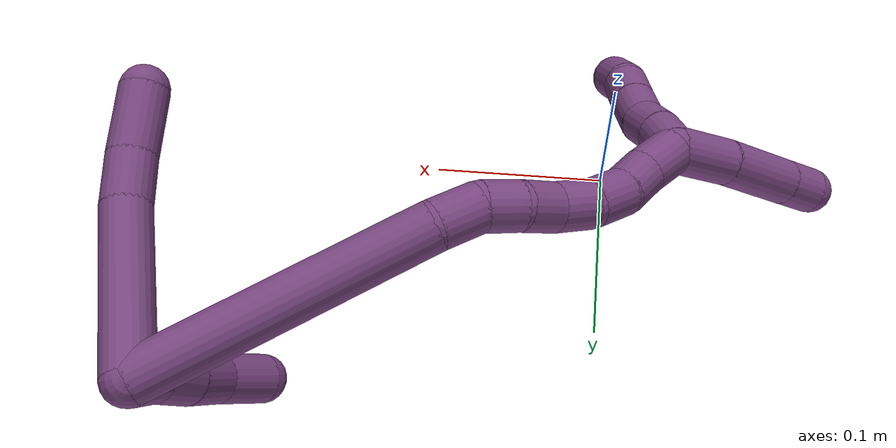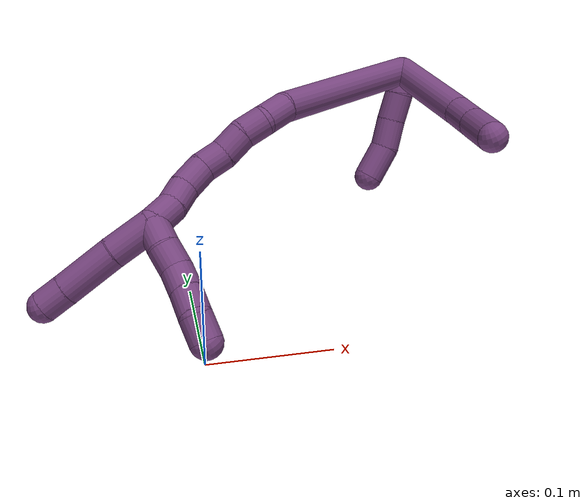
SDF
<sdf version="1.7">
 <world name="default">
  <model name="20">
   <static>0</static>
   <link name="20">
    <collision name="collision-cylinder-e_1_2_8">
     <pose>0.008859 -0.04054 -0.013693 1.89653 0.20416 0.283527</pose>
     <geometry><cylinder><radius>0.0125</radius><length>0.087395</length></cylinder></geometry>
     <surface>
      <friction><ode><mu>1.16</mu><mu2>1.16</mu2><slip1>0</slip1><slip2>0</slip2></ode></friction>
      <contact><ode><kp>1e+06</kp><kd>1</kd><max_vel>0</max_vel><min_depth>0.001</min_depth></ode></contact>
     </surface>
    </collision>
    <visual name="visual-cylinder-e_1_2_8">
     <pose>0.008859 -0.04054 -0.013693 1.89653 0.20416 0.283527</pose>
     <geometry><cylinder><radius>0.0125</radius><length>0.087395</length></cylinder></geometry>
     <material><ambient>0.478431 0.278431 0.509804 1</ambient></material>
    </visual>
    <collision name="collision-cylinder-e_2_8_9">
     <pose>0.019231 -0.094142 -0.029885 1.75981 0.113204 0.136845</pose>
     <geometry><cylinder><radius>0.0125</radius><length>0.026769</length></cylinder></geometry>
     <surface>
      <friction><ode><mu>1.16</mu><mu2>1.16</mu2><slip1>0</slip1><slip2>0</slip2></ode></friction>
      <contact><ode><kp>1e+06</kp><kd>1</kd><max_vel>0</max_vel><min_depth>0.001</min_depth></ode></contact>
     </surface>
    </collision>
    <visual name="visual-cylinder-e_2_8_9">
     <pose>0.019231 -0.094142 -0.029885 1.75981 0.113204 0.136845</pose>
     <geometry><cylinder><radius>0.0125</radius><length>0.026769</length></cylinder></geometry>
     <material><ambient>0.478431 0.278431 0.509804 1</ambient></material>
    </visual>
    <collision name="collision-cylinder-e_3_9_6">
     <pose>0.021783 -0.125038 -0.033764 1.64808 0.058082 0.062751</pose>
     <geometry><cylinder><radius>0.0125</radius><length>0.035836</length></cylinder></geometry>
     <surface>
      <friction><ode><mu>1.16</mu><mu2>1.16</mu2><slip1>0</slip1><slip2>0</slip2></ode></friction>
      <contact><ode><kp>1e+06</kp><kd>1</kd><max_vel>0</max_vel><min_depth>0.001</min_depth></ode></contact>
     </surface>
    </collision>
    <visual name="visual-cylinder-e_3_9_6">
     <pose>0.021783 -0.125038 -0.033764 1.64808 0.058082 0.062751</pose>
     <geometry><cylinder><radius>0.0125</radius><length>0.035836</length></cylinder></geometry>
     <material><ambient>0.478431 0.278431 0.509804 1</ambient></material>
    </visual>
    <collision name="collision-cylinder-e_1_2_10">
     <pose>-0.005601 -0.002738 -0.008095 2.81541 -0.580142 -2.13395</pose>
     <geometry><cylinder><radius>0.0125</radius><length>0.020435</length></cylinder></geometry>
     <surface>
      <friction><ode><mu>1.16</mu><mu2>1.16</mu2><slip1>0</slip1><slip2>0</slip2></ode></friction>
      <contact><ode><kp>1e+06</kp><kd>1</kd><max_vel>0</max_vel><min_depth>0.001</min_depth></ode></contact>
     </surface>
    </collision>
    <visual name="visual-cylinder-e_1_2_10">
     <pose>-0.005601 -0.002738 -0.008095 2.81541 -0.580142 -2.13395</pose>
     <geometry><cylinder><radius>0.0125</radius><length>0.020435</length></cylinder></geometry>
     <material><ambient>0.478431 0.278431 0.509804 1</ambient></material>
    </visual>
    <collision name="collision-cylinder-e_2_10_11">
     <pose>-0.019285 -0.007274 -0.025122 2.94304 -0.72571 -2.62846</pose>
     <geometry><cylinder><radius>0.0125</radius><length>0.024359</length></cylinder></geometry>
     <surface>
      <friction><ode><mu>1.16</mu><mu2>1.16</mu2><slip1>0</slip1><slip2>0</slip2></ode></friction>
      <contact><ode><kp>1e+06</kp><kd>1</kd><max_vel>0</max_vel><min_depth>0.001</min_depth></ode></contact>
     </surface>
    </collision>
    <visual name="visual-cylinder-e_2_10_11">
     <pose>-0.019285 -0.007274 -0.025122 2.94304 -0.72571 -2.62846</pose>
     <geometry><cylinder><radius>0.0125</radius><length>0.024359</length></cylinder></geometry>
     <material><ambient>0.478431 0.278431 0.509804 1</ambient></material>
    </visual>
    <collision name="collision-cylinder-e_3_11_12">
     <pose>-0.035308 -0.011902 -0.043513 2.85078 -0.677322 -2.35357</pose>
     <geometry><cylinder><radius>0.0125</radius><length>0.025341</length></cylinder></geometry>
     <surface>
      <friction><ode><mu>1.16</mu><mu2>1.16</mu2><slip1>0</slip1><slip2>0</slip2></ode></friction>
      <contact><ode><kp>1e+06</kp><kd>1</kd><max_vel>0</max_vel><min_depth>0.001</min_depth></ode></contact>
     </surface>
    </collision>
    <visual name="visual-cylinder-e_3_11_12">
     <pose>-0.035308 -0.011902 -0.043513 2.85078 -0.677322 -2.35357</pose>
     <geometry><cylinder><radius>0.0125</radius><length>0.025341</length></cylinder></geometry>
     <material><ambient>0.478431 0.278431 0.509804 1</ambient></material>
    </visual>
    <collision name="collision-cylinder-e_4_12_5">
     <pose>-0.055415 -0.018006 -0.060988 2.75397 -0.952235 -2.41423</pose>
     <geometry><cylinder><radius>0.0125</radius><length>0.029865</length></cylinder></geometry>
     <surface>
      <friction><ode><mu>1.16</mu><mu2>1.16</mu2><slip1>0</slip1><slip2>0</slip2></ode></friction>
      <contact><ode><kp>1e+06</kp><kd>1</kd><max_vel>0</max_vel><min_depth>0.001</min_depth></ode></contact>
     </surface>
    </collision>
    <visual name="visual-cylinder-e_4_12_5">
     <pose>-0.055415 -0.018006 -0.060988 2.75397 -0.952235 -2.41423</pose>
     <geometry><cylinder><radius>0.0125</radius><length>0.029865</length></cylinder></geometry>
     <material><ambient>0.478431 0.278431 0.509804 1</ambient></material>
    </visual>
    <collision name="collision-cylinder-e_1_2_13">
     <pose>-0.055322 -0.043752 0.021185 1.11986 -0.849878 -0.55279</pose>
     <geometry><cylinder><radius>0.0125</radius><length>0.14729</length></cylinder></geometry>
     <surface>
      <friction><ode><mu>1.16</mu><mu2>1.16</mu2><slip1>0</slip1><slip2>0</slip2></ode></friction>
      <contact><ode><kp>1e+06</kp><kd>1</kd><max_vel>0</max_vel><min_depth>0.001</min_depth></ode></contact>
     </surface>
    </collision>
    <visual name="visual-cylinder-e_1_2_13">
     <pose>-0.055322 -0.043752 0.021185 1.11986 -0.849878 -0.55279</pose>
     <geometry><cylinder><radius>0.0125</radius><length>0.14729</length></cylinder></geometry>
     <material><ambient>0.478431 0.278431 0.509804 1</ambient></material>
    </visual>
    <collision name="collision-cylinder-e_2_13_14">
     <pose>-0.120395 -0.094411 0.043221 1.44834 -0.950895 -0.854608</pose>
     <geometry><cylinder><radius>0.0125</radius><length>0.02396</length></cylinder></geometry>
     <surface>
      <friction><ode><mu>1.16</mu><mu2>1.16</mu2><slip1>0</slip1><slip2>0</slip2></ode></friction>
      <contact><ode><kp>1e+06</kp><kd>1</kd><max_vel>0</max_vel><min_depth>0.001</min_depth></ode></contact>
     </surface>
    </collision>
    <visual name="visual-cylinder-e_2_13_14">
     <pose>-0.120395 -0.094411 0.043221 1.44834 -0.950895 -0.854608</pose>
     <geometry><cylinder><radius>0.0125</radius><length>0.02396</length></cylinder></geometry>
     <material><ambient>0.478431 0.278431 0.509804 1</ambient></material>
    </visual>
    <collision name="collision-cylinder-e_3_14_15">
     <pose>-0.139976 -0.104181 0.043745 1.68412 -1.28573 -1.39625</pose>
     <geometry><cylinder><radius>0.0125</radius><length>0.020488</length></cylinder></geometry>
     <surface>
      <friction><ode><mu>1.16</mu><mu2>1.16</mu2><slip1>0</slip1><slip2>0</slip2></ode></friction>
      <contact><ode><kp>1e+06</kp><kd>1</kd><max_vel>0</max_vel><min_depth>0.001</min_depth></ode></contact>
     </surface>
    </collision>
    <visual name="visual-cylinder-e_3_14_15">
     <pose>-0.139976 -0.104181 0.043745 1.68412 -1.28573 -1.39625</pose>
     <geometry><cylinder><radius>0.0125</radius><length>0.020488</length></cylinder></geometry>
     <material><ambient>0.478431 0.278431 0.509804 1</ambient></material>
    </visual>
    <collision name="collision-cylinder-e_4_15_16">
     <pose>-0.159613 -0.109996 0.040405 2.3665 -1.16447 -2.0316</pose>
     <geometry><cylinder><radius>0.0125</radius><length>0.021351</length></cylinder></geometry>
     <surface>
      <friction><ode><mu>1.16</mu><mu2>1.16</mu2><slip1>0</slip1><slip2>0</slip2></ode></friction>
      <contact><ode><kp>1e+06</kp><kd>1</kd><max_vel>0</max_vel><min_depth>0.001</min_depth></ode></contact>
     </surface>
    </collision>
    <visual name="visual-cylinder-e_4_15_16">
     <pose>-0.159613 -0.109996 0.040405 2.3665 -1.16447 -2.0316</pose>
     <geometry><cylinder><radius>0.0125</radius><length>0.021351</length></cylinder></geometry>
     <material><ambient>0.478431 0.278431 0.509804 1</ambient></material>
    </visual>
    <collision name="collision-cylinder-e_5_16_17">
     <pose>-0.178968 -0.116399 0.037063 1.66571 -1.22266 -1.31336</pose>
     <geometry><cylinder><radius>0.0125</radius><length>0.020316</length></cylinder></geometry>
     <surface>
      <friction><ode><mu>1.16</mu><mu2>1.16</mu2><slip1>0</slip1><slip2>0</slip2></ode></friction>
      <contact><ode><kp>1e+06</kp><kd>1</kd><max_vel>0</max_vel><min_depth>0.001</min_depth></ode></contact>
     </surface>
    </collision>
    <visual name="visual-cylinder-e_5_16_17">
     <pose>-0.178968 -0.116399 0.037063 1.66571 -1.22266 -1.31336</pose>
     <geometry><cylinder><radius>0.0125</radius><length>0.020316</length></cylinder></geometry>
     <material><ambient>0.478431 0.278431 0.509804 1</ambient></material>
    </visual>
    <collision name="collision-cylinder-e_6_17_18">
     <pose>-0.197859 -0.126171 0.034657 1.88827 -0.951821 -1.23733</pose>
     <geometry><cylinder><radius>0.0125</radius><length>0.022942</length></cylinder></geometry>
     <surface>
      <friction><ode><mu>1.16</mu><mu2>1.16</mu2><slip1>0</slip1><slip2>0</slip2></ode></friction>
      <contact><ode><kp>1e+06</kp><kd>1</kd><max_vel>0</max_vel><min_depth>0.001</min_depth></ode></contact>
     </surface>
    </collision>
    <visual name="visual-cylinder-e_6_17_18">
     <pose>-0.197859 -0.126171 0.034657 1.88827 -0.951821 -1.23733</pose>
     <geometry><cylinder><radius>0.0125</radius><length>0.022942</length></cylinder></geometry>
     <material><ambient>0.478431 0.278431 0.509804 1</ambient></material>
    </visual>
    <collision name="collision-cylinder-e_7_18_19">
     <pose>-0.213612 -0.140213 0.030434 1.84183 -0.67486 -0.864966</pose>
     <geometry><cylinder><radius>0.0125</radius><length>0.02052</length></cylinder></geometry>
     <surface>
      <friction><ode><mu>1.16</mu><mu2>1.16</mu2><slip1>0</slip1><slip2>0</slip2></ode></friction>
      <contact><ode><kp>1e+06</kp><kd>1</kd><max_vel>0</max_vel><min_depth>0.001</min_depth></ode></contact>
     </surface>
    </collision>
    <visual name="visual-cylinder-e_7_18_19">
     <pose>-0.213612 -0.140213 0.030434 1.84183 -0.67486 -0.864966</pose>
     <geometry><cylinder><radius>0.0125</radius><length>0.02052</length></cylinder></geometry>
     <material><ambient>0.478431 0.278431 0.509804 1</ambient></material>
    </visual>
    <collision name="collision-cylinder-e_8_19_1">
     <pose>-0.227998 -0.156308 0.028404 1.55714 -0.760801 -0.75143</pose>
     <geometry><cylinder><radius>0.0125</radius><length>0.023134</length></cylinder></geometry>
     <surface>
      <friction><ode><mu>1.16</mu><mu2>1.16</mu2><slip1>0</slip1><slip2>0</slip2></ode></friction>
      <contact><ode><kp>1e+06</kp><kd>1</kd><max_vel>0</max_vel><min_depth>0.001</min_depth></ode></contact>
     </surface>
    </collision>
    <visual name="visual-cylinder-e_8_19_1">
     <pose>-0.227998 -0.156308 0.028404 1.55714 -0.760801 -0.75143</pose>
     <geometry><cylinder><radius>0.0125</radius><length>0.023134</length></cylinder></geometry>
     <material><ambient>0.478431 0.278431 0.509804 1</ambient></material>
    </visual>
    <collision name="collision-cylinder-e_1_1_20">
     <pose>-0.23531 -0.171526 0.021254 2.38621 0.066367 0.166955</pose>
     <geometry><cylinder><radius>0.0125</radius><length>0.02</length></cylinder></geometry>
     <surface>
      <friction><ode><mu>1.16</mu><mu2>1.16</mu2><slip1>0</slip1><slip2>0</slip2></ode></friction>
      <contact><ode><kp>1e+06</kp><kd>1</kd><max_vel>0</max_vel><min_depth>0.001</min_depth></ode></contact>
     </surface>
    </collision>
    <visual name="visual-cylinder-e_1_1_20">
     <pose>-0.23531 -0.171526 0.021254 2.38621 0.066367 0.166955</pose>
     <geometry><cylinder><radius>0.0125</radius><length>0.02</length></cylinder></geometry>
     <material><ambient>0.478431 0.278431 0.509804 1</ambient></material>
    </visual>
    <collision name="collision-cylinder-e_2_20_21">
     <pose>-0.233509 -0.184093 0.005872 2.52723 0.114075 0.356184</pose>
     <geometry><cylinder><radius>0.0125</radius><length>0.02</length></cylinder></geometry>
     <surface>
      <friction><ode><mu>1.16</mu><mu2>1.16</mu2><slip1>0</slip1><slip2>0</slip2></ode></friction>
      <contact><ode><kp>1e+06</kp><kd>1</kd><max_vel>0</max_vel><min_depth>0.001</min_depth></ode></contact>
     </surface>
    </collision>
    <visual name="visual-cylinder-e_2_20_21">
     <pose>-0.233509 -0.184093 0.005872 2.52723 0.114075 0.356184</pose>
     <geometry><cylinder><radius>0.0125</radius><length>0.02</length></cylinder></geometry>
     <material><ambient>0.478431 0.278431 0.509804 1</ambient></material>
    </visual>
    <collision name="collision-cylinder-e_3_21_22">
     <pose>-0.231856 -0.197723 -0.008352 2.22864 0.051478 0.104756</pose>
     <geometry><cylinder><radius>0.0125</radius><length>0.02</length></cylinder></geometry>
     <surface>
      <friction><ode><mu>1.16</mu><mu2>1.16</mu2><slip1>0</slip1><slip2>0</slip2></ode></friction>
      <contact><ode><kp>1e+06</kp><kd>1</kd><max_vel>0</max_vel><min_depth>0.001</min_depth></ode></contact>
     </surface>
    </collision>
    <visual name="visual-cylinder-e_3_21_22">
     <pose>-0.231856 -0.197723 -0.008352 2.22864 0.051478 0.104756</pose>
     <geometry><cylinder><radius>0.0125</radius><length>0.02</length></cylinder></geometry>
     <material><ambient>0.478431 0.278431 0.509804 1</ambient></material>
    </visual>
    <collision name="collision-cylinder-e_4_22_23">
     <pose>-0.23126 -0.213536 -0.020576 2.22904 0.00813 0.016563</pose>
     <geometry><cylinder><radius>0.0125</radius><length>0.02</length></cylinder></geometry>
     <surface>
      <friction><ode><mu>1.16</mu><mu2>1.16</mu2><slip1>0</slip1><slip2>0</slip2></ode></friction>
      <contact><ode><kp>1e+06</kp><kd>1</kd><max_vel>0</max_vel><min_depth>0.001</min_depth></ode></contact>
     </surface>
    </collision>
    <visual name="visual-cylinder-e_4_22_23">
     <pose>-0.23126 -0.213536 -0.020576 2.22904 0.00813 0.016563</pose>
     <geometry><cylinder><radius>0.0125</radius><length>0.02</length></cylinder></geometry>
     <material><ambient>0.478431 0.278431 0.509804 1</ambient></material>
    </visual>
    <collision name="collision-cylinder-e_5_23_4">
     <pose>-0.231375 -0.226838 -0.035112 2.57198 -0.019585 -0.066874</pose>
     <geometry><cylinder><radius>0.0125</radius><length>0.02</length></cylinder></geometry>
     <surface>
      <friction><ode><mu>1.16</mu><mu2>1.16</mu2><slip1>0</slip1><slip2>0</slip2></ode></friction>
      <contact><ode><kp>1e+06</kp><kd>1</kd><max_vel>0</max_vel><min_depth>0.001</min_depth></ode></contact>
     </surface>
    </collision>
    <visual name="visual-cylinder-e_5_23_4">
     <pose>-0.231375 -0.226838 -0.035112 2.57198 -0.019585 -0.066874</pose>
     <geometry><cylinder><radius>0.0125</radius><length>0.02</length></cylinder></geometry>
     <material><ambient>0.478431 0.278431 0.509804 1</ambient></material>
    </visual>
    <collision name="collision-cylinder-e_1_1_24">
     <pose>-0.25333 -0.166763 0.025928 2.46569 -1.38176 -2.33778</pose>
     <geometry><cylinder><radius>0.0125</radius><length>0.035342</length></cylinder></geometry>
     <surface>
      <friction><ode><mu>1.16</mu><mu2>1.16</mu2><slip1>0</slip1><slip2>0</slip2></ode></friction>
      <contact><ode><kp>1e+06</kp><kd>1</kd><max_vel>0</max_vel><min_depth>0.001</min_depth></ode></contact>
     </surface>
    </collision>
    <visual name="visual-cylinder-e_1_1_24">
     <pose>-0.25333 -0.166763 0.025928 2.46569 -1.38176 -2.33778</pose>
     <geometry><cylinder><radius>0.0125</radius><length>0.035342</length></cylinder></geometry>
     <material><ambient>0.478431 0.278431 0.509804 1</ambient></material>
    </visual>
    <collision name="collision-cylinder-e_2_24_25">
     <pose>-0.29218 -0.170316 0.018909 2.82 -1.35695 -2.74449</pose>
     <geometry><cylinder><radius>0.0125</radius><length>0.043991</length></cylinder></geometry>
     <surface>
      <friction><ode><mu>1.16</mu><mu2>1.16</mu2><slip1>0</slip1><slip2>0</slip2></ode></friction>
      <contact><ode><kp>1e+06</kp><kd>1</kd><max_vel>0</max_vel><min_depth>0.001</min_depth></ode></contact>
     </surface>
    </collision>
    <visual name="visual-cylinder-e_2_24_25">
     <pose>-0.29218 -0.170316 0.018909 2.82 -1.35695 -2.74449</pose>
     <geometry><cylinder><radius>0.0125</radius><length>0.043991</length></cylinder></geometry>
     <material><ambient>0.478431 0.278431 0.509804 1</ambient></material>
    </visual>
    <collision name="collision-cylinder-e_3_25_3">
     <pose>-0.323806 -0.17245 0.012553 2.812 -1.37236 -2.7409</pose>
     <geometry><cylinder><radius>0.0125</radius><length>0.020667</length></cylinder></geometry>
     <surface>
      <friction><ode><mu>1.16</mu><mu2>1.16</mu2><slip1>0</slip1><slip2>0</slip2></ode></friction>
      <contact><ode><kp>1e+06</kp><kd>1</kd><max_vel>0</max_vel><min_depth>0.001</min_depth></ode></contact>
     </surface>
    </collision>
    <visual name="visual-cylinder-e_3_25_3">
     <pose>-0.323806 -0.17245 0.012553 2.812 -1.37236 -2.7409</pose>
     <geometry><cylinder><radius>0.0125</radius><length>0.020667</length></cylinder></geometry>
     <material><ambient>0.478431 0.278431 0.509804 1</ambient></material>
    </visual>
    <collision name="collision-sphere-3">
     <pose>-0.333936 -0.17311 0.010625 0 -0 0</pose>
     <geometry><sphere><radius>0.0125</radius></sphere></geometry>
     <surface>
      <friction><ode><mu>1.16</mu><mu2>1.16</mu2><slip1>0</slip1><slip2>0</slip2></ode></friction>
      <contact><ode><kp>1e+06</kp><kd>1</kd><max_vel>0</max_vel><min_depth>0.001</min_depth></ode></contact>
     </surface>
    </collision>
    <visual name="visual-sphere-3">
     <pose>-0.333936 -0.17311 0.010625 0 -0 0</pose>
     <geometry><sphere><radius>0.0125</radius></sphere></geometry>
     <material><ambient>0.478431 0.278431 0.509804 1</ambient></material>
    </visual>
    <collision name="collision-sphere-25">
     <pose>-0.313675 -0.171791 0.01448 0 -0 0</pose>
     <geometry><sphere><radius>0.0125</radius></sphere></geometry>
     <surface>
      <friction><ode><mu>1.16</mu><mu2>1.16</mu2><slip1>0</slip1><slip2>0</slip2></ode></friction>
      <contact><ode><kp>1e+06</kp><kd>1</kd><max_vel>0</max_vel><min_depth>0.001</min_depth></ode></contact>
     </surface>
    </collision>
    <visual name="visual-sphere-25">
     <pose>-0.313675 -0.171791 0.01448 0 -0 0</pose>
     <geometry><sphere><radius>0.0125</radius></sphere></geometry>
     <material><ambient>0.478431 0.278431 0.509804 1</ambient></material>
    </visual>
    <collision name="collision-sphere-24">
     <pose>-0.270686 -0.16884 0.023337 0 -0 0</pose>
     <geometry><sphere><radius>0.0125</radius></sphere></geometry>
     <surface>
      <friction><ode><mu>1.16</mu><mu2>1.16</mu2><slip1>0</slip1><slip2>0</slip2></ode></friction>
      <contact><ode><kp>1e+06</kp><kd>1</kd><max_vel>0</max_vel><min_depth>0.001</min_depth></ode></contact>
     </surface>
    </collision>
    <visual name="visual-sphere-24">
     <pose>-0.270686 -0.16884 0.023337 0 -0 0</pose>
     <geometry><sphere><radius>0.0125</radius></sphere></geometry>
     <material><ambient>0.478431 0.278431 0.509804 1</ambient></material>
    </visual>
    <collision name="collision-sphere-4">
     <pose>-0.231571 -0.23223 -0.043532 0 -0 0</pose>
     <geometry><sphere><radius>0.0125</radius></sphere></geometry>
     <surface>
      <friction><ode><mu>1.16</mu><mu2>1.16</mu2><slip1>0</slip1><slip2>0</slip2></ode></friction>
      <contact><ode><kp>1e+06</kp><kd>1</kd><max_vel>0</max_vel><min_depth>0.001</min_depth></ode></contact>
     </surface>
    </collision>
    <visual name="visual-sphere-4">
     <pose>-0.231571 -0.23223 -0.043532 0 -0 0</pose>
     <geometry><sphere><radius>0.0125</radius></sphere></geometry>
     <material><ambient>0.478431 0.278431 0.509804 1</ambient></material>
    </visual>
    <collision name="collision-sphere-23">
     <pose>-0.231179 -0.221446 -0.026693 0 -0 0</pose>
     <geometry><sphere><radius>0.0125</radius></sphere></geometry>
     <surface>
      <friction><ode><mu>1.16</mu><mu2>1.16</mu2><slip1>0</slip1><slip2>0</slip2></ode></friction>
      <contact><ode><kp>1e+06</kp><kd>1</kd><max_vel>0</max_vel><min_depth>0.001</min_depth></ode></contact>
     </surface>
    </collision>
    <visual name="visual-sphere-23">
     <pose>-0.231179 -0.221446 -0.026693 0 -0 0</pose>
     <geometry><sphere><radius>0.0125</radius></sphere></geometry>
     <material><ambient>0.478431 0.278431 0.509804 1</ambient></material>
    </visual>
    <collision name="collision-sphere-22">
     <pose>-0.231341 -0.205625 -0.014458 0 -0 0</pose>
     <geometry><sphere><radius>0.0125</radius></sphere></geometry>
     <surface>
      <friction><ode><mu>1.16</mu><mu2>1.16</mu2><slip1>0</slip1><slip2>0</slip2></ode></friction>
      <contact><ode><kp>1e+06</kp><kd>1</kd><max_vel>0</max_vel><min_depth>0.001</min_depth></ode></contact>
     </surface>
    </collision>
    <visual name="visual-sphere-22">
     <pose>-0.231341 -0.205625 -0.014458 0 -0 0</pose>
     <geometry><sphere><radius>0.0125</radius></sphere></geometry>
     <material><ambient>0.478431 0.278431 0.509804 1</ambient></material>
    </visual>
    <collision name="collision-sphere-21">
     <pose>-0.232371 -0.18982 -0.002246 0 -0 0</pose>
     <geometry><sphere><radius>0.0125</radius></sphere></geometry>
     <surface>
      <friction><ode><mu>1.16</mu><mu2>1.16</mu2><slip1>0</slip1><slip2>0</slip2></ode></friction>
      <contact><ode><kp>1e+06</kp><kd>1</kd><max_vel>0</max_vel><min_depth>0.001</min_depth></ode></contact>
     </surface>
    </collision>
    <visual name="visual-sphere-21">
     <pose>-0.232371 -0.18982 -0.002246 0 -0 0</pose>
     <geometry><sphere><radius>0.0125</radius></sphere></geometry>
     <material><ambient>0.478431 0.278431 0.509804 1</ambient></material>
    </visual>
    <collision name="collision-sphere-20">
     <pose>-0.234647 -0.178366 0.01399 0 -0 0</pose>
     <geometry><sphere><radius>0.0125</radius></sphere></geometry>
     <surface>
      <friction><ode><mu>1.16</mu><mu2>1.16</mu2><slip1>0</slip1><slip2>0</slip2></ode></friction>
      <contact><ode><kp>1e+06</kp><kd>1</kd><max_vel>0</max_vel><min_depth>0.001</min_depth></ode></contact>
     </surface>
    </collision>
    <visual name="visual-sphere-20">
     <pose>-0.234647 -0.178366 0.01399 0 -0 0</pose>
     <geometry><sphere><radius>0.0125</radius></sphere></geometry>
     <material><ambient>0.478431 0.278431 0.509804 1</ambient></material>
    </visual>
    <collision name="collision-sphere-11">
     <pose>-0.027368 -0.009071 -0.034054 0 -0 0</pose>
     <geometry><sphere><radius>0.0125</radius></sphere></geometry>
     <surface>
      <friction><ode><mu>1.16</mu><mu2>1.16</mu2><slip1>0</slip1><slip2>0</slip2></ode></friction>
      <contact><ode><kp>1e+06</kp><kd>1</kd><max_vel>0</max_vel><min_depth>0.001</min_depth></ode></contact>
     </surface>
    </collision>
    <visual name="visual-sphere-11">
     <pose>-0.027368 -0.009071 -0.034054 0 -0 0</pose>
     <geometry><sphere><radius>0.0125</radius></sphere></geometry>
     <material><ambient>0.478431 0.278431 0.509804 1</ambient></material>
    </visual>
    <collision name="collision-sphere-10">
     <pose>-0.011202 -0.005477 -0.016191 0 -0 0</pose>
     <geometry><sphere><radius>0.0125</radius></sphere></geometry>
     <surface>
      <friction><ode><mu>1.16</mu><mu2>1.16</mu2><slip1>0</slip1><slip2>0</slip2></ode></friction>
      <contact><ode><kp>1e+06</kp><kd>1</kd><max_vel>0</max_vel><min_depth>0.001</min_depth></ode></contact>
     </surface>
    </collision>
    <visual name="visual-sphere-10">
     <pose>-0.011202 -0.005477 -0.016191 0 -0 0</pose>
     <geometry><sphere><radius>0.0125</radius></sphere></geometry>
     <material><ambient>0.478431 0.278431 0.509804 1</ambient></material>
    </visual>
    <collision name="collision-sphere-6">
     <pose>0.022823 -0.142873 -0.035145 0 -0 0</pose>
     <geometry><sphere><radius>0.0125</radius></sphere></geometry>
     <surface>
      <friction><ode><mu>1.16</mu><mu2>1.16</mu2><slip1>0</slip1><slip2>0</slip2></ode></friction>
      <contact><ode><kp>1e+06</kp><kd>1</kd><max_vel>0</max_vel><min_depth>0.001</min_depth></ode></contact>
     </surface>
    </collision>
    <visual name="visual-sphere-6">
     <pose>0.022823 -0.142873 -0.035145 0 -0 0</pose>
     <geometry><sphere><radius>0.0125</radius></sphere></geometry>
     <material><ambient>0.478431 0.278431 0.509804 1</ambient></material>
    </visual>
    <collision name="collision-sphere-9">
     <pose>0.020743 -0.107204 -0.032383 0 -0 0</pose>
     <geometry><sphere><radius>0.0125</radius></sphere></geometry>
     <surface>
      <friction><ode><mu>1.16</mu><mu2>1.16</mu2><slip1>0</slip1><slip2>0</slip2></ode></friction>
      <contact><ode><kp>1e+06</kp><kd>1</kd><max_vel>0</max_vel><min_depth>0.001</min_depth></ode></contact>
     </surface>
    </collision>
    <visual name="visual-sphere-9">
     <pose>0.020743 -0.107204 -0.032383 0 -0 0</pose>
     <geometry><sphere><radius>0.0125</radius></sphere></geometry>
     <material><ambient>0.478431 0.278431 0.509804 1</ambient></material>
    </visual>
    <collision name="collision-sphere-2">
     <geometry><sphere><radius>0.0125</radius></sphere></geometry>
     <surface>
      <friction><ode><mu>1.16</mu><mu2>1.16</mu2><slip1>0</slip1><slip2>0</slip2></ode></friction>
      <contact><ode><kp>1e+06</kp><kd>1</kd><max_vel>0</max_vel><min_depth>0.001</min_depth></ode></contact>
     </surface>
    </collision>
    <visual name="visual-sphere-2">
     <geometry><sphere><radius>0.0125</radius></sphere></geometry>
     <material><ambient>0.478431 0.278431 0.509804 1</ambient></material>
    </visual>
    <collision name="collision-sphere-19">
     <pose>-0.220023 -0.147931 0.02829 0 -0 0</pose>
     <geometry><sphere><radius>0.0125</radius></sphere></geometry>
     <surface>
      <friction><ode><mu>1.16</mu><mu2>1.16</mu2><slip1>0</slip1><slip2>0</slip2></ode></friction>
      <contact><ode><kp>1e+06</kp><kd>1</kd><max_vel>0</max_vel><min_depth>0.001</min_depth></ode></contact>
     </surface>
    </collision>
    <visual name="visual-sphere-19">
     <pose>-0.220023 -0.147931 0.02829 0 -0 0</pose>
     <geometry><sphere><radius>0.0125</radius></sphere></geometry>
     <material><ambient>0.478431 0.278431 0.509804 1</ambient></material>
    </visual>
    <collision name="collision-sphere-8">
     <pose>0.017719 -0.08108 -0.027386 0 -0 0</pose>
     <geometry><sphere><radius>0.0125</radius></sphere></geometry>
     <surface>
      <friction><ode><mu>1.16</mu><mu2>1.16</mu2><slip1>0</slip1><slip2>0</slip2></ode></friction>
      <contact><ode><kp>1e+06</kp><kd>1</kd><max_vel>0</max_vel><min_depth>0.001</min_depth></ode></contact>
     </surface>
    </collision>
    <visual name="visual-sphere-8">
     <pose>0.017719 -0.08108 -0.027386 0 -0 0</pose>
     <geometry><sphere><radius>0.0125</radius></sphere></geometry>
     <material><ambient>0.478431 0.278431 0.509804 1</ambient></material>
    </visual>
    <collision name="collision-sphere-12">
     <pose>-0.043249 -0.014733 -0.052972 0 -0 0</pose>
     <geometry><sphere><radius>0.0125</radius></sphere></geometry>
     <surface>
      <friction><ode><mu>1.16</mu><mu2>1.16</mu2><slip1>0</slip1><slip2>0</slip2></ode></friction>
      <contact><ode><kp>1e+06</kp><kd>1</kd><max_vel>0</max_vel><min_depth>0.001</min_depth></ode></contact>
     </surface>
    </collision>
    <visual name="visual-sphere-12">
     <pose>-0.043249 -0.014733 -0.052972 0 -0 0</pose>
     <geometry><sphere><radius>0.0125</radius></sphere></geometry>
     <material><ambient>0.478431 0.278431 0.509804 1</ambient></material>
    </visual>
    <collision name="collision-sphere-5">
     <pose>-0.06758 -0.021279 -0.069004 0 -0 0</pose>
     <geometry><sphere><radius>0.0125</radius></sphere></geometry>
     <surface>
      <friction><ode><mu>1.16</mu><mu2>1.16</mu2><slip1>0</slip1><slip2>0</slip2></ode></friction>
      <contact><ode><kp>1e+06</kp><kd>1</kd><max_vel>0</max_vel><min_depth>0.001</min_depth></ode></contact>
     </surface>
    </collision>
    <visual name="visual-sphere-5">
     <pose>-0.06758 -0.021279 -0.069004 0 -0 0</pose>
     <geometry><sphere><radius>0.0125</radius></sphere></geometry>
     <material><ambient>0.478431 0.278431 0.509804 1</ambient></material>
    </visual>
    <collision name="collision-sphere-13">
     <pose>-0.110644 -0.087504 0.042371 0 -0 0</pose>
     <geometry><sphere><radius>0.0125</radius></sphere></geometry>
     <surface>
      <friction><ode><mu>1.16</mu><mu2>1.16</mu2><slip1>0</slip1><slip2>0</slip2></ode></friction>
      <contact><ode><kp>1e+06</kp><kd>1</kd><max_vel>0</max_vel><min_depth>0.001</min_depth></ode></contact>
     </surface>
    </collision>
    <visual name="visual-sphere-13">
     <pose>-0.110644 -0.087504 0.042371 0 -0 0</pose>
     <geometry><sphere><radius>0.0125</radius></sphere></geometry>
     <material><ambient>0.478431 0.278431 0.509804 1</ambient></material>
    </visual>
    <collision name="collision-sphere-14">
     <pose>-0.130146 -0.101319 0.044071 0 -0 0</pose>
     <geometry><sphere><radius>0.0125</radius></sphere></geometry>
     <surface>
      <friction><ode><mu>1.16</mu><mu2>1.16</mu2><slip1>0</slip1><slip2>0</slip2></ode></friction>
      <contact><ode><kp>1e+06</kp><kd>1</kd><max_vel>0</max_vel><min_depth>0.001</min_depth></ode></contact>
     </surface>
    </collision>
    <visual name="visual-sphere-14">
     <pose>-0.130146 -0.101319 0.044071 0 -0 0</pose>
     <geometry><sphere><radius>0.0125</radius></sphere></geometry>
     <material><ambient>0.478431 0.278431 0.509804 1</ambient></material>
    </visual>
    <collision name="collision-sphere-15">
     <pose>-0.149807 -0.107044 0.043419 0 -0 0</pose>
     <geometry><sphere><radius>0.0125</radius></sphere></geometry>
     <surface>
      <friction><ode><mu>1.16</mu><mu2>1.16</mu2><slip1>0</slip1><slip2>0</slip2></ode></friction>
      <contact><ode><kp>1e+06</kp><kd>1</kd><max_vel>0</max_vel><min_depth>0.001</min_depth></ode></contact>
     </surface>
    </collision>
    <visual name="visual-sphere-15">
     <pose>-0.149807 -0.107044 0.043419 0 -0 0</pose>
     <geometry><sphere><radius>0.0125</radius></sphere></geometry>
     <material><ambient>0.478431 0.278431 0.509804 1</ambient></material>
    </visual>
    <collision name="collision-sphere-16">
     <pose>-0.169419 -0.112949 0.037391 0 -0 0</pose>
     <geometry><sphere><radius>0.0125</radius></sphere></geometry>
     <surface>
      <friction><ode><mu>1.16</mu><mu2>1.16</mu2><slip1>0</slip1><slip2>0</slip2></ode></friction>
      <contact><ode><kp>1e+06</kp><kd>1</kd><max_vel>0</max_vel><min_depth>0.001</min_depth></ode></contact>
     </surface>
    </collision>
    <visual name="visual-sphere-16">
     <pose>-0.169419 -0.112949 0.037391 0 -0 0</pose>
     <geometry><sphere><radius>0.0125</radius></sphere></geometry>
     <material><ambient>0.478431 0.278431 0.509804 1</ambient></material>
    </visual>
    <collision name="collision-sphere-17">
     <pose>-0.188516 -0.119849 0.036734 0 -0 0</pose>
     <geometry><sphere><radius>0.0125</radius></sphere></geometry>
     <surface>
      <friction><ode><mu>1.16</mu><mu2>1.16</mu2><slip1>0</slip1><slip2>0</slip2></ode></friction>
      <contact><ode><kp>1e+06</kp><kd>1</kd><max_vel>0</max_vel><min_depth>0.001</min_depth></ode></contact>
     </surface>
    </collision>
    <visual name="visual-sphere-17">
     <pose>-0.188516 -0.119849 0.036734 0 -0 0</pose>
     <geometry><sphere><radius>0.0125</radius></sphere></geometry>
     <material><ambient>0.478431 0.278431 0.509804 1</ambient></material>
    </visual>
    <collision name="collision-sphere-18">
     <pose>-0.207202 -0.132494 0.032579 0 -0 0</pose>
     <geometry><sphere><radius>0.0125</radius></sphere></geometry>
     <surface>
      <friction><ode><mu>1.16</mu><mu2>1.16</mu2><slip1>0</slip1><slip2>0</slip2></ode></friction>
      <contact><ode><kp>1e+06</kp><kd>1</kd><max_vel>0</max_vel><min_depth>0.001</min_depth></ode></contact>
     </surface>
    </collision>
    <visual name="visual-sphere-18">
     <pose>-0.207202 -0.132494 0.032579 0 -0 0</pose>
     <geometry><sphere><radius>0.0125</radius></sphere></geometry>
     <material><ambient>0.478431 0.278431 0.509804 1</ambient></material>
    </visual>
    <collision name="collision-sphere-1">
     <pose>-0.235973 -0.164685 0.028518 0 -0 0</pose>
     <geometry><sphere><radius>0.0125</radius></sphere></geometry>
     <surface>
      <friction><ode><mu>1.16</mu><mu2>1.16</mu2><slip1>0</slip1><slip2>0</slip2></ode></friction>
      <contact><ode><kp>1e+06</kp><kd>1</kd><max_vel>0</max_vel><min_depth>0.001</min_depth></ode></contact>
     </surface>
    </collision>
    <visual name="visual-sphere-1">
     <pose>-0.235973 -0.164685 0.028518 0 -0 0</pose>
     <geometry><sphere><radius>0.0125</radius></sphere></geometry>
     <material><ambient>0.478431 0.278431 0.509804 1</ambient></material>
    </visual>
    <inertial>
     <pose>-0.117294 -0.097844 0.004141 0 -0 0</pose>
     <mass>0.75</mass>
     <inertia>
      <ixx>0.000101</ixx>
      <ixy>0</ixy>
      <ixz>0</ixz>
      <iyy>8.8e-05</iyy>
      <iyz>0</iyz>
      <izz>0.000449</izz>
     </inertia>
    </inertial>
   </link>
   <pose>0.207457 0.194611 0.14848 -0.165109 -0.409248 0.001774</pose>
  </model>
 </world>
</sdf>
